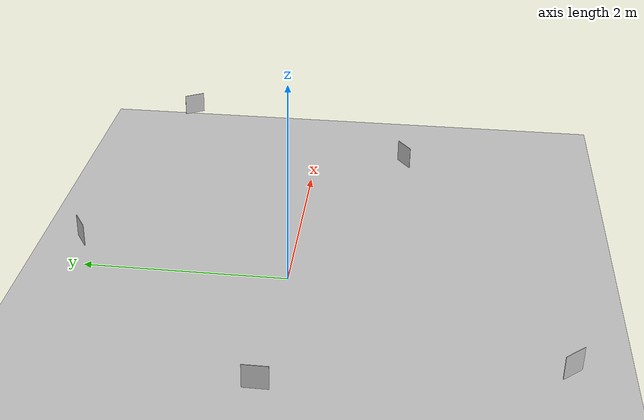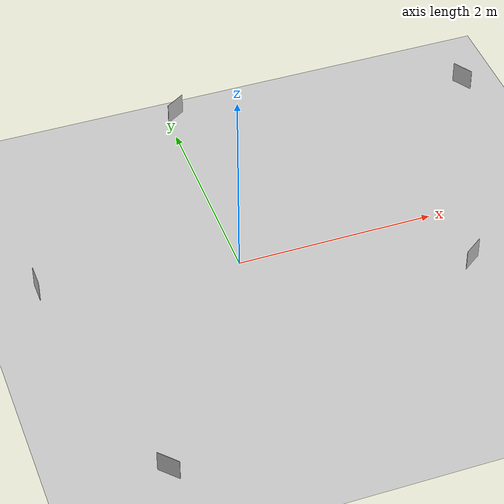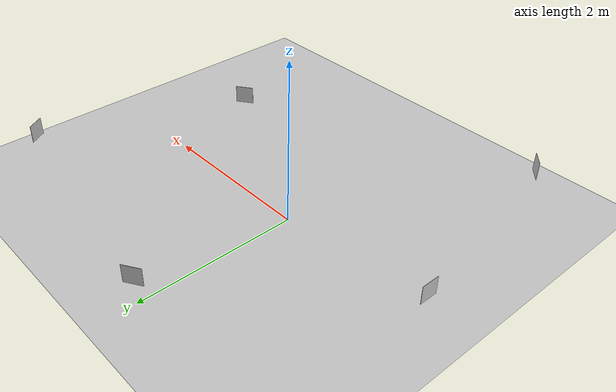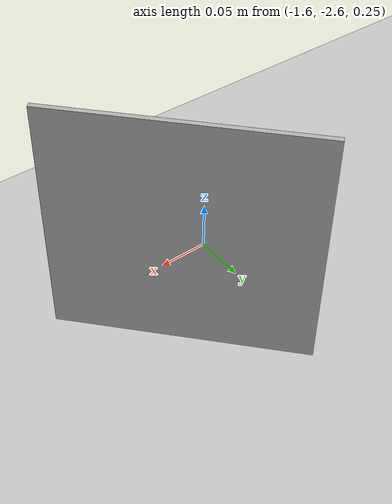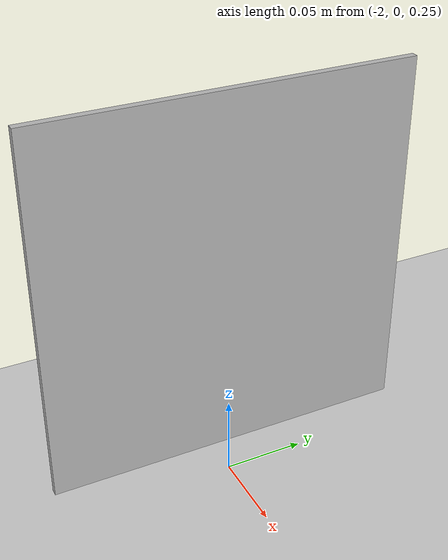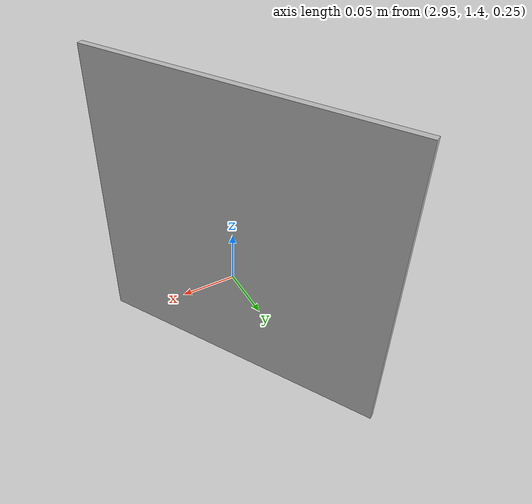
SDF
<sdf version="1.4">
 <world name="default">
  <physics type="ode">
   <gravity>0 0 -9.8</gravity>
   <ode>
    <solver><type>quick</type><iters>20</iters><sor>1.0</sor></solver>
    <constraints>
     <cfm>0.0</cfm>
     <erp>0.2</erp>
     <contact_max_correcting_vel>100.0</contact_max_correcting_vel>
     <contact_surface_layer>0.0</contact_surface_layer>
    </constraints>
   </ode>
   <max_step_size>0.001</max_step_size>
  </physics>
  <include><uri>model://marker13</uri><name>Marker_01</name><pose>2.0 -1.0 0.275 0.0 0.0 2.2</pose></include>
  <include><uri>model://marker13</uri><name>Marker_02</name><pose>-1.5 -2.5 0.275 0.0 0.0 0.75</pose></include>
  <include><uri>model://marker13</uri><name>Marker_03</name><pose>-2.0 0.0 0.275 0.0 0.0 0.0</pose></include>
  <include><uri>model://marker13</uri><name>Marker_04</name><pose>0.0 2.0 0.275 0.0 0.0 -1.0</pose></include>
  <include><uri>model://marker13</uri><name>Marker_05</name><pose>3.0 1.5 0.275 0.0 0.0 -2.6</pose></include>
  <include><uri>model://sun</uri></include>
  <include><uri>model://ground_plane</uri></include>
 </world>
</sdf>

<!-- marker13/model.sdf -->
<sdf version="1.6">
  <model name="Marker13">
    <static>true</static>
    <link name="link">
      <visual name="visual">
        <geometry>
          <mesh>
            <uri>model://marker13/meshes/Marker13.dae</uri>
          <scale>0.45 0.45 0.45</scale></mesh>
        </geometry>
      </visual>
    </link>
  </model>
</sdf>
